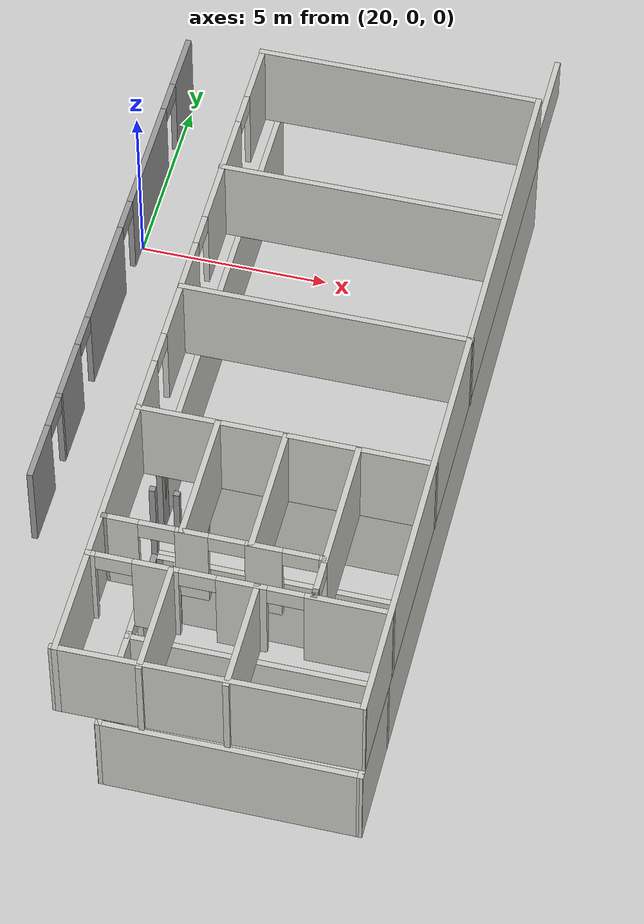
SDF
<sdf version="1.6">
 <world name="default">
  <model name="ground_plane">
   <static>1</static>
   <link name="link">
    <collision name="collision">
     <geometry><plane><normal>0 0 1</normal><size>100 100</size></plane></geometry>
     <surface>
      <contact><collide_bitmask>65535</collide_bitmask></contact>
      <friction><ode><mu>100</mu><mu2>50</mu2></ode></friction>
     </surface>
    </collision>
    <visual name="visual">
     <cast_shadows>0</cast_shadows>
     <geometry><plane><normal>0 0 1</normal><size>100 100</size></plane></geometry>
     <material>
      <script><uri>file://media/materials/scripts/gazebo.material</uri><name>Gazebo/Grey</name></script>
     </material>
    </visual>
   </link>
  </model>
  <model name="ifes_bloco_m">
   <pose>0.003818 -4.2564 0 0 -0 0</pose>
   <link name="Wall_1">
    <collision name="Wall_1_Collision">
     <geometry><box><size>19.98 0.15 2.5</size></box></geometry>
     <pose>0 0 1.25 0 -0 0</pose>
    </collision>
    <visual name="Wall_1_Visual">
     <pose>0 0 1.25 0 -0 0</pose>
     <geometry><box><size>19.98 0.15 2.5</size></box></geometry>
     <material>
      <script><uri>file://media/materials/scripts/gazebo.material</uri><name>Gazebo/CeilingTiled</name></script>
      <ambient>1 1 1 1</ambient>
     </material>
     <meta><layer>0</layer></meta>
    </visual>
    <pose>29.8619 -2.4541 0 0 -0 -1.57029</pose>
   </link>
   <link name="Wall_10">
    <collision name="Wall_10_Collision">
     <geometry><box><size>6.25 0.15 2.5</size></box></geometry>
     <pose>0 0 1.25 0 -0 0</pose>
    </collision>
    <visual name="Wall_10_Visual">
     <pose>0 0 1.25 0 -0 0</pose>
     <geometry><box><size>6.25 0.15 2.5</size></box></geometry>
     <material>
      <script><uri>file://media/materials/scripts/gazebo.material</uri><name>Gazebo/CeilingTiled</name></script>
      <ambient>1 1 1 1</ambient>
     </material>
     <meta><layer>0</layer></meta>
    </visual>
    <pose>26.7153 -7.31464 0 0 -0 3.14159</pose>
   </link>
   <link name="Wall_118">
    <collision name="Wall_118_Collision">
     <geometry><box><size>7.5 0.15 2.5</size></box></geometry>
     <pose>0 0 1.25 0 -0 0</pose>
    </collision>
    <visual name="Wall_118_Visual">
     <pose>0 0 1.25 0 -0 0</pose>
     <geometry><box><size>7.5 0.15 2.5</size></box></geometry>
     <material>
      <script><uri>file://media/materials/scripts/gazebo.material</uri><name>Gazebo/CeilingTiled</name></script>
      <ambient>1 1 1 1</ambient>
     </material>
     <meta><layer>1</layer></meta>
    </visual>
    <pose>26.1723 3.25797 2.5 0 -0 0</pose>
   </link>
   <link name="Wall_12">
    <collision name="Wall_12_Collision">
     <geometry><box><size>0.15 0.15 2.5</size></box></geometry>
     <pose>0 0 1.25 0 -0 0</pose>
    </collision>
    <visual name="Wall_12_Visual">
     <pose>0 0 1.25 0 -0 0</pose>
     <geometry><box><size>0.15 0.15 2.5</size></box></geometry>
     <material>
      <script><uri>file://media/materials/scripts/gazebo.material</uri><name>Gazebo/Grey</name></script>
      <ambient>1 1 1 1</ambient>
     </material>
     <meta><layer>0</layer></meta>
    </visual>
    <pose>23.6653 -7.31464 0 0 -0 0</pose>
   </link>
   <link name="Wall_120">
    <collision name="Wall_120_Collision">
     <geometry><box><size>7.5 0.15 2.5</size></box></geometry>
     <pose>0 0 1.25 0 -0 0</pose>
    </collision>
    <visual name="Wall_120_Visual">
     <pose>0 0 1.25 0 -0 0</pose>
     <geometry><box><size>7.5 0.15 2.5</size></box></geometry>
     <material>
      <script><uri>file://media/materials/scripts/gazebo.material</uri><name>Gazebo/CeilingTiled</name></script>
      <ambient>1 1 1 1</ambient>
     </material>
     <meta><layer>1</layer></meta>
    </visual>
    <pose>26.2075 -0.857943 2.5 0 -0 0</pose>
   </link>
   <link name="Wall_121">
    <collision name="Wall_121_Collision">
     <geometry><box><size>0.15 0.15 2.5</size></box></geometry>
     <pose>0 0 1.25 0 -0 0</pose>
    </collision>
    <visual name="Wall_121_Visual">
     <pose>0 0 1.25 0 -0 0</pose>
     <geometry><box><size>0.15 0.15 2.5</size></box></geometry>
     <material>
      <script><uri>file://media/materials/scripts/gazebo.material</uri><name>Gazebo/Grey</name></script>
      <ambient>1 1 1 1</ambient>
     </material>
     <meta><layer>1</layer></meta>
    </visual>
    <pose>29.8825 -0.857943 2.5 0 -0 0</pose>
   </link>
   <link name="Wall_124">
    <collision name="Wall_124_Collision">
     <geometry><box><size>7.5 0.15 2.5</size></box></geometry>
     <pose>0 0 1.25 0 -0 0</pose>
    </collision>
    <visual name="Wall_124_Visual">
     <pose>0 0 1.25 0 -0 0</pose>
     <geometry><box><size>7.5 0.15 2.5</size></box></geometry>
     <material>
      <script><uri>file://media/materials/scripts/gazebo.material</uri><name>Gazebo/CeilingTiled</name></script>
      <ambient>1 1 1 1</ambient>
     </material>
     <meta><layer>1</layer></meta>
    </visual>
    <pose>26.2012 -4.84441 2.5 0 -0 0</pose>
   </link>
   <link name="Wall_129">
    <collision name="Wall_129_Collision">
     <geometry><box><size>3.5 0.15 2.5</size></box></geometry>
     <pose>0 0 1.25 0 -0 0</pose>
    </collision>
    <visual name="Wall_129_Visual">
     <pose>0 0 1.25 0 -0 0</pose>
     <geometry><box><size>3.5 0.15 2.5</size></box></geometry>
     <material>
      <script><uri>file://media/materials/scripts/gazebo.material</uri><name>Gazebo/CeilingTiled</name></script>
      <ambient>1 1 1 1</ambient>
     </material>
     <meta><layer>1</layer></meta>
    </visual>
    <pose>24.5069 -6.54663 2.5 0 -0 -1.5708</pose>
   </link>
   <link name="Wall_131">
    <collision name="Wall_131_Collision">
     <geometry><box><size>3.5 0.15 2.5</size></box></geometry>
     <pose>0 0 1.25 0 -0 0</pose>
    </collision>
    <visual name="Wall_131_Visual">
     <pose>0 0 1.25 0 -0 0</pose>
     <geometry><box><size>3.5 0.15 2.5</size></box></geometry>
     <material>
      <script><uri>file://media/materials/scripts/gazebo.material</uri><name>Gazebo/CeilingTiled</name></script>
      <ambient>1 1 1 1</ambient>
     </material>
     <meta><layer>1</layer></meta>
    </visual>
    <pose>26.203 -6.54862 2.5 0 -0 -1.5708</pose>
   </link>
   <link name="Wall_133">
    <pose>28.0029 -7.04663 2.5 0 -0 -1.5708</pose>
    <visual name="Wall_133_Visual_0">
     <pose>-0.471414 0 1.25 0 -0 0</pose>
     <geometry><box><size>3.55717 0.15 2.5</size></box></geometry>
     <material>
      <script><uri>file://media/materials/scripts/gazebo.material</uri><name>Gazebo/CeilingTiled</name></script>
      <ambient>1 1 1 1</ambient>
     </material>
     <meta><layer>1</layer></meta>
    </visual>
    <collision name="Wall_133_Collision_0">
     <geometry><box><size>3.55717 0.15 2.5</size></box></geometry>
     <pose>-0.471414 0 1.25 0 -0 0</pose>
    </collision>
    <visual name="Wall_133_Visual_1">
     <pose>2.22859 0 1.25 0 -0 0</pose>
     <geometry><box><size>0.042828 0.15 2.5</size></box></geometry>
     <material>
      <script><uri>file://media/materials/scripts/gazebo.material</uri><name>Gazebo/CeilingTiled</name></script>
      <ambient>1 1 1 1</ambient>
     </material>
     <meta><layer>1</layer></meta>
    </visual>
    <collision name="Wall_133_Collision_1">
     <geometry><box><size>0.042828 0.15 2.5</size></box></geometry>
     <pose>2.22859 0 1.25 0 -0 0</pose>
    </collision>
    <visual name="Wall_133_Visual_2">
     <pose>1.75717 0 2.25 0 -0 0</pose>
     <geometry><box><size>0.9 0.15 0.5</size></box></geometry>
     <material>
      <script><uri>file://media/materials/scripts/gazebo.material</uri><name>Gazebo/CeilingTiled</name></script>
      <ambient>1 1 1 1</ambient>
     </material>
     <meta><layer>1</layer></meta>
    </visual>
    <collision name="Wall_133_Collision_2">
     <geometry><box><size>0.9 0.15 0.5</size></box></geometry>
     <pose>1.75717 0 2.25 0 -0 0</pose>
    </collision>
   </link>
   <link name="Wall_134">
    <collision name="Wall_134_Collision">
     <geometry><box><size>0.25 0.15 2.5</size></box></geometry>
     <pose>0 0 1.25 0 -0 0</pose>
    </collision>
    <visual name="Wall_134_Visual">
     <pose>0 0 1.25 0 -0 0</pose>
     <geometry><box><size>0.25 0.15 2.5</size></box></geometry>
     <material>
      <script><uri>file://media/materials/scripts/gazebo.material</uri><name>Gazebo/Grey</name></script>
      <ambient>1 1 1 1</ambient>
     </material>
     <meta><layer>1</layer></meta>
    </visual>
    <pose>28.0029 -9.27163 2.5 0 -0 -1.5708</pose>
   </link>
   <link name="Wall_136">
    <collision name="Wall_136_Collision">
     <geometry><box><size>3 0.15 2.5</size></box></geometry>
     <pose>0 0 1.25 0 -0 0</pose>
    </collision>
    <visual name="Wall_136_Visual">
     <pose>0 0 1.25 0 -0 0</pose>
     <geometry><box><size>3 0.15 2.5</size></box></geometry>
     <material>
      <script><uri>file://media/materials/scripts/gazebo.material</uri><name>Gazebo/CeilingTiled</name></script>
      <ambient>1 1 1 1</ambient>
     </material>
     <meta><layer>1</layer></meta>
    </visual>
    <pose>24.5584 -10.8398 2.5 0 -0 -1.5708</pose>
   </link>
   <link name="Wall_138">
    <collision name="Wall_138_Collision">
     <geometry><box><size>3 0.15 2.5</size></box></geometry>
     <pose>0 0 1.25 0 -0 0</pose>
    </collision>
    <visual name="Wall_138_Visual">
     <pose>0 0 1.25 0 -0 0</pose>
     <geometry><box><size>3 0.15 2.5</size></box></geometry>
     <material>
      <script><uri>file://media/materials/scripts/gazebo.material</uri><name>Gazebo/CeilingTiled</name></script>
      <ambient>1 1 1 1</ambient>
     </material>
     <meta><layer>1</layer></meta>
    </visual>
    <pose>26.6381 -10.8335 2.5 0 -0 -1.5708</pose>
   </link>
   <link name="Wall_14">
    <collision name="Wall_14_Collision">
     <geometry><box><size>6.5 0.15 2.5</size></box></geometry>
     <pose>0 0 1.25 0 -0 0</pose>
    </collision>
    <visual name="Wall_14_Visual">
     <pose>0 0 1.25 0 -0 0</pose>
     <geometry><box><size>6.5 0.15 2.5</size></box></geometry>
     <material>
      <script><uri>file://media/materials/scripts/gazebo.material</uri><name>Gazebo/CeilingTiled</name></script>
      <ambient>1 1 1 1</ambient>
     </material>
     <meta><layer>0</layer></meta>
    </visual>
    <pose>26.6942 -9.78365 0 0 -0 0</pose>
   </link>
   <link name="Wall_141">
    <collision name="Wall_141_Collision">
     <geometry><box><size>2.71955 0.15 1.25</size></box></geometry>
     <pose>0 0 0.625 0 -0 0</pose>
    </collision>
    <visual name="Wall_141_Visual">
     <pose>0 0 0.625 0 -0 0</pose>
     <geometry><box><size>2.71955 0.15 1.25</size></box></geometry>
     <material>
      <script><uri>file://media/materials/scripts/gazebo.material</uri><name>Gazebo/CeilingTiled</name></script>
      <ambient>0.921569 0.807843 0.615686 1</ambient>
     </material>
     <meta><layer>1</layer></meta>
    </visual>
    <pose>29.8668 8.69064 2.5 0 -0 -1.57819</pose>
   </link>
   <link name="Wall_144">
    <collision name="Wall_144_Collision">
     <geometry><box><size>7.50007 0.15 2.5</size></box></geometry>
     <pose>0 0 1.25 0 -0 0</pose>
    </collision>
    <visual name="Wall_144_Visual">
     <pose>0 0 1.25 0 -0 0</pose>
     <geometry><box><size>7.50007 0.15 2.5</size></box></geometry>
     <material>
      <script><uri>file://media/materials/scripts/gazebo.material</uri><name>Gazebo/CeilingTiled</name></script>
      <ambient>1 1 1 1</ambient>
     </material>
     <meta><layer>1</layer></meta>
    </visual>
    <pose>26.1821 7.41341 2.5 0 -0 3.13962</pose>
   </link>
   <link name="Wall_16">
    <collision name="Wall_16_Collision">
     <geometry><box><size>0.508751 0.15 2.5</size></box></geometry>
     <pose>0 0 1.25 0 -0 0</pose>
    </collision>
    <visual name="Wall_16_Visual">
     <pose>0 0 1.25 0 -0 0</pose>
     <geometry><box><size>0.508751 0.15 2.5</size></box></geometry>
     <material>
      <script><uri>file://media/materials/scripts/gazebo.material</uri><name>Gazebo/Grey</name></script>
      <ambient>1 1 1 1</ambient>
     </material>
     <meta><layer>0</layer></meta>
    </visual>
    <pose>23.5113 -7.36843 0 0 -0 1.5949</pose>
   </link>
   <link name="Wall_17">
    <collision name="Wall_17_Collision">
     <geometry><box><size>0.15 0.15 2.5</size></box></geometry>
     <pose>0 0 1.25 0 -0 0</pose>
    </collision>
    <visual name="Wall_17_Visual">
     <pose>0 0 1.25 0 -0 0</pose>
     <geometry><box><size>0.15 0.15 2.5</size></box></geometry>
     <material>
      <script><uri>file://media/materials/scripts/gazebo.material</uri><name>Gazebo/Grey</name></script>
      <ambient>1 1 1 1</ambient>
     </material>
     <meta><layer>0</layer></meta>
    </visual>
    <pose>23.5069 -7.1891 0 0 -0 0</pose>
   </link>
   <link name="Wall_18">
    <collision name="Wall_18_Collision">
     <geometry><box><size>0.75 0.15 2.5</size></box></geometry>
     <pose>0 0 1.25 0 -0 0</pose>
    </collision>
    <visual name="Wall_18_Visual">
     <pose>0 0 1.25 0 -0 0</pose>
     <geometry><box><size>0.75 0.15 2.5</size></box></geometry>
     <material>
      <script><uri>file://media/materials/scripts/gazebo.material</uri><name>Gazebo/CeilingTiled</name></script>
      <ambient>1 1 1 1</ambient>
     </material>
     <meta><layer>0</layer></meta>
    </visual>
    <pose>23.8069 -7.1891 0 0 -0 0</pose>
   </link>
   <link name="Wall_19">
    <collision name="Wall_19_Collision">
     <geometry><box><size>0.15 0.15 2.5</size></box></geometry>
     <pose>0 0 1.25 0 -0 0</pose>
    </collision>
    <visual name="Wall_19_Visual">
     <pose>0 0 1.25 0 -0 0</pose>
     <geometry><box><size>0.15 0.15 2.5</size></box></geometry>
     <material>
      <script><uri>file://media/materials/scripts/gazebo.material</uri><name>Gazebo/Grey</name></script>
      <ambient>1 1 1 1</ambient>
     </material>
     <meta><layer>0</layer></meta>
    </visual>
    <pose>24.1069 -7.1891 0 0 -0 0</pose>
   </link>
   <link name="Wall_2">
    <collision name="Wall_2_Collision">
     <geometry><box><size>6.5 0.15 2.5</size></box></geometry>
     <pose>0 0 1.25 0 -0 0</pose>
    </collision>
    <visual name="Wall_2_Visual">
     <pose>0 0 1.25 0 -0 0</pose>
     <geometry><box><size>6.5 0.15 2.5</size></box></geometry>
     <material>
      <script><uri>file://media/materials/scripts/gazebo.material</uri><name>Gazebo/CeilingTiled</name></script>
      <ambient>1 1 1 1</ambient>
     </material>
     <meta><layer>0</layer></meta>
    </visual>
    <pose>26.6819 -12.3691 0 0 -0 3.14159</pose>
   </link>
   <link name="Wall_3">
    <pose>23.5163 -9.95843 0 0 -0 1.57108</pose>
    <visual name="Wall_3_Visual_0">
     <pose>-2.37408 0 1.25 0 -0 0</pose>
     <geometry><box><size>0.223186 0.15 2.5</size></box></geometry>
     <material>
      <script><uri>file://media/materials/scripts/gazebo.material</uri><name>Gazebo/CeilingTiled</name></script>
      <ambient>1 1 1 1</ambient>
     </material>
     <meta><layer>0</layer></meta>
    </visual>
    <collision name="Wall_3_Collision_0">
     <geometry><box><size>0.223186 0.15 2.5</size></box></geometry>
     <pose>-2.37408 0 1.25 0 -0 0</pose>
    </collision>
    <visual name="Wall_3_Visual_1">
     <pose>-0.52713 0 1.25 0 -0 0</pose>
     <geometry><box><size>1.67072 0.15 2.5</size></box></geometry>
     <material>
      <script><uri>file://media/materials/scripts/gazebo.material</uri><name>Gazebo/CeilingTiled</name></script>
      <ambient>1 1 1 1</ambient>
     </material>
     <meta><layer>0</layer></meta>
    </visual>
    <collision name="Wall_3_Collision_1">
     <geometry><box><size>1.67072 0.15 2.5</size></box></geometry>
     <pose>-0.52713 0 1.25 0 -0 0</pose>
    </collision>
    <visual name="Wall_3_Visual_2">
     <pose>1.84695 0 1.25 0 -0 0</pose>
     <geometry><box><size>1.27745 0.15 2.5</size></box></geometry>
     <material>
      <script><uri>file://media/materials/scripts/gazebo.material</uri><name>Gazebo/CeilingTiled</name></script>
      <ambient>1 1 1 1</ambient>
     </material>
     <meta><layer>0</layer></meta>
    </visual>
    <collision name="Wall_3_Collision_2">
     <geometry><box><size>1.27745 0.15 2.5</size></box></geometry>
     <pose>1.84695 0 1.25 0 -0 0</pose>
    </collision>
    <visual name="Wall_3_Visual_3">
     <pose>-1.81249 0 2.25 0 -0 0</pose>
     <geometry><box><size>0.9 0.15 0.5</size></box></geometry>
     <material>
      <script><uri>file://media/materials/scripts/gazebo.material</uri><name>Gazebo/CeilingTiled</name></script>
      <ambient>1 1 1 1</ambient>
     </material>
     <meta><layer>0</layer></meta>
    </visual>
    <collision name="Wall_3_Collision_3">
     <geometry><box><size>0.9 0.15 0.5</size></box></geometry>
     <pose>-1.81249 0 2.25 0 -0 0</pose>
    </collision>
    <visual name="Wall_3_Visual_4">
     <pose>0.75823 0 2.25 0 -0 0</pose>
     <geometry><box><size>0.9 0.15 0.5</size></box></geometry>
     <material>
      <script><uri>file://media/materials/scripts/gazebo.material</uri><name>Gazebo/CeilingTiled</name></script>
      <ambient>1 1 1 1</ambient>
     </material>
     <meta><layer>0</layer></meta>
    </visual>
    <collision name="Wall_3_Collision_4">
     <geometry><box><size>0.9 0.15 0.5</size></box></geometry>
     <pose>0.75823 0 2.25 0 -0 0</pose>
    </collision>
   </link>
   <link name="Wall_31">
    <collision name="Wall_31_Collision">
     <geometry><box><size>12 0.15 2.5</size></box></geometry>
     <pose>0 0 1.25 0 -0 0</pose>
    </collision>
    <visual name="Wall_31_Visual">
     <pose>0 0 1.25 0 -0 0</pose>
     <geometry><box><size>12 0.15 2.5</size></box></geometry>
     <material>
      <script><uri>file://media/materials/scripts/gazebo.material</uri><name>Gazebo/CeilingTiled</name></script>
      <ambient>1 1 1 1</ambient>
     </material>
     <meta><layer>0</layer></meta>
    </visual>
    <pose>22.9246 1.61931 0 0 -0 -1.5708</pose>
   </link>
   <link name="Wall_32">
    <collision name="Wall_32_Collision">
     <geometry><box><size>0.25 0.15 2.5</size></box></geometry>
     <pose>0 0 1.25 0 -0 0</pose>
    </collision>
    <visual name="Wall_32_Visual">
     <pose>0 0 1.25 0 -0 0</pose>
     <geometry><box><size>0.25 0.15 2.5</size></box></geometry>
     <material>
      <script><uri>file://media/materials/scripts/gazebo.material</uri><name>Gazebo/Grey</name></script>
      <ambient>1 1 1 1</ambient>
     </material>
     <meta><layer>0</layer></meta>
    </visual>
    <pose>22.9246 -4.35569 0 0 -0 -1.5708</pose>
   </link>
   <link name="Wall_33">
    <collision name="Wall_33_Collision">
     <geometry><box><size>0.25 0.15 2.5</size></box></geometry>
     <pose>0 0 1.25 0 -0 0</pose>
    </collision>
    <visual name="Wall_33_Visual">
     <pose>0 0 1.25 0 -0 0</pose>
     <geometry><box><size>0.25 0.15 2.5</size></box></geometry>
     <material>
      <script><uri>file://media/materials/scripts/gazebo.material</uri><name>Gazebo/Grey</name></script>
      <ambient>1 1 1 1</ambient>
     </material>
     <meta><layer>0</layer></meta>
    </visual>
    <pose>22.9246 -4.35569 0 0 -0 1.5708</pose>
   </link>
   <link name="Wall_34">
    <collision name="Wall_34_Collision">
     <geometry><box><size>0.5 0.15 2.5</size></box></geometry>
     <pose>0 0 1.25 0 -0 0</pose>
    </collision>
    <visual name="Wall_34_Visual">
     <pose>0 0 1.25 0 -0 0</pose>
     <geometry><box><size>0.5 0.15 2.5</size></box></geometry>
     <material>
      <script><uri>file://media/materials/scripts/gazebo.material</uri><name>Gazebo/Grey</name></script>
      <ambient>1 1 1 1</ambient>
     </material>
     <meta><layer>0</layer></meta>
    </visual>
    <pose>22.9246 -4.48069 0 0 -0 -1.5708</pose>
   </link>
   <link name="Wall_5">
    <pose>24.1013 -6.00614 0 0 -0 1.57382</pose>
    <visual name="Wall_5_Visual_0">
     <pose>-0.588924 0 1.25 0 -0 0</pose>
     <geometry><box><size>1.83081 0.15 2.5</size></box></geometry>
     <material>
      <script><uri>file://media/materials/scripts/gazebo.material</uri><name>Gazebo/CeilingTiled</name></script>
      <ambient>1 1 1 1</ambient>
     </material>
     <meta><layer>0</layer></meta>
    </visual>
    <collision name="Wall_5_Collision_0">
     <geometry><box><size>1.83081 0.15 2.5</size></box></geometry>
     <pose>-0.588924 0 1.25 0 -0 0</pose>
    </collision>
    <visual name="Wall_5_Visual_1">
     <pose>1.36541 0 1.25 0 -0 0</pose>
     <geometry><box><size>0.277848 0.15 2.5</size></box></geometry>
     <material>
      <script><uri>file://media/materials/scripts/gazebo.material</uri><name>Gazebo/CeilingTiled</name></script>
      <ambient>1 1 1 1</ambient>
     </material>
     <meta><layer>0</layer></meta>
    </visual>
    <collision name="Wall_5_Collision_1">
     <geometry><box><size>0.277848 0.15 2.5</size></box></geometry>
     <pose>1.36541 0 1.25 0 -0 0</pose>
    </collision>
    <visual name="Wall_5_Visual_2">
     <pose>0.776482 0 2.25 0 -0 0</pose>
     <geometry><box><size>0.9 0.15 0.5</size></box></geometry>
     <material>
      <script><uri>file://media/materials/scripts/gazebo.material</uri><name>Gazebo/CeilingTiled</name></script>
      <ambient>1 1 1 1</ambient>
     </material>
     <meta><layer>0</layer></meta>
    </visual>
    <collision name="Wall_5_Collision_2">
     <geometry><box><size>0.9 0.15 0.5</size></box></geometry>
     <pose>0.776482 0 2.25 0 -0 0</pose>
    </collision>
   </link>
   <link name="Wall_57">
    <collision name="Wall_57_Collision">
     <geometry><box><size>19.6952 0.15 2.5</size></box></geometry>
     <pose>0 0 1.25 0 -0 0</pose>
    </collision>
    <visual name="Wall_57_Visual">
     <pose>0 0 1.25 0 -0 0</pose>
     <geometry><box><size>19.6952 0.15 2.5</size></box></geometry>
     <material>
      <script><uri>file://media/materials/scripts/gazebo.material</uri><name>Gazebo/CeilingTiled</name></script>
      <ambient>1 1 1 1</ambient>
     </material>
     <meta><layer>1</layer></meta>
    </visual>
    <pose>29.8571 -2.36648 2.5 0 -0 -1.57082</pose>
   </link>
   <link name="Wall_58">
    <collision name="Wall_58_Collision">
     <geometry><box><size>7.55854 0.15 2.5</size></box></geometry>
     <pose>0 0 1.25 0 -0 0</pose>
    </collision>
    <visual name="Wall_58_Visual">
     <pose>0 0 1.25 0 -0 0</pose>
     <geometry><box><size>7.55854 0.15 2.5</size></box></geometry>
     <material>
      <script><uri>file://media/materials/scripts/gazebo.material</uri><name>Gazebo/CeilingTiled</name></script>
      <ambient>1 1 1 1</ambient>
     </material>
     <meta><layer>1</layer></meta>
    </visual>
    <pose>26.1528 -12.1743 2.5 0 -0 -3.1321</pose>
   </link>
   <link name="Wall_59">
    <pose>22.5191 -2.40946 2.5 0 -0 1.5708</pose>
    <visual name="Wall_59_Visual_0">
     <pose>-5.41052 0 1.25 0 -0 0</pose>
     <geometry><box><size>8.92896 0.15 2.5</size></box></geometry>
     <material>
      <script><uri>file://media/materials/scripts/gazebo.material</uri><name>Gazebo/CeilingTiled</name></script>
      <ambient>1 1 1 1</ambient>
     </material>
     <meta><layer>1</layer></meta>
    </visual>
    <collision name="Wall_59_Collision_0">
     <geometry><box><size>8.92896 0.15 2.5</size></box></geometry>
     <pose>-5.41052 0 1.25 0 -0 0</pose>
    </collision>
    <visual name="Wall_59_Visual_1">
     <pose>1.48163 0 1.25 0 -0 0</pose>
     <geometry><box><size>3.05533 0.15 2.5</size></box></geometry>
     <material>
      <script><uri>file://media/materials/scripts/gazebo.material</uri><name>Gazebo/CeilingTiled</name></script>
      <ambient>1 1 1 1</ambient>
     </material>
     <meta><layer>1</layer></meta>
    </visual>
    <collision name="Wall_59_Collision_1">
     <geometry><box><size>3.05533 0.15 2.5</size></box></geometry>
     <pose>1.48163 0 1.25 0 -0 0</pose>
    </collision>
    <visual name="Wall_59_Visual_2">
     <pose>5.58731 0 1.25 0 -0 0</pose>
     <geometry><box><size>3.35603 0.15 2.5</size></box></geometry>
     <material>
      <script><uri>file://media/materials/scripts/gazebo.material</uri><name>Gazebo/CeilingTiled</name></script>
      <ambient>1 1 1 1</ambient>
     </material>
     <meta><layer>1</layer></meta>
    </visual>
    <collision name="Wall_59_Collision_2">
     <geometry><box><size>3.35603 0.15 2.5</size></box></geometry>
     <pose>5.58731 0 1.25 0 -0 0</pose>
    </collision>
    <visual name="Wall_59_Visual_3">
     <pose>9.02016 0 1.25 0 -0 0</pose>
     <geometry><box><size>1.70968 0.15 2.5</size></box></geometry>
     <material>
      <script><uri>file://media/materials/scripts/gazebo.material</uri><name>Gazebo/CeilingTiled</name></script>
      <ambient>1 1 1 1</ambient>
     </material>
     <meta><layer>1</layer></meta>
    </visual>
    <collision name="Wall_59_Collision_3">
     <geometry><box><size>1.70968 0.15 2.5</size></box></geometry>
     <pose>9.02016 0 1.25 0 -0 0</pose>
    </collision>
    <visual name="Wall_59_Visual_4">
     <pose>-0.49604 0 2.25 0 -0 0</pose>
     <geometry><box><size>0.9 0.15 0.5</size></box></geometry>
     <material>
      <script><uri>file://media/materials/scripts/gazebo.material</uri><name>Gazebo/CeilingTiled</name></script>
      <ambient>1 1 1 1</ambient>
     </material>
     <meta><layer>1</layer></meta>
    </visual>
    <collision name="Wall_59_Collision_4">
     <geometry><box><size>0.9 0.15 0.5</size></box></geometry>
     <pose>-0.49604 0 2.25 0 -0 0</pose>
    </collision>
    <visual name="Wall_59_Visual_5">
     <pose>3.45929 0 2.25 0 -0 0</pose>
     <geometry><box><size>0.9 0.15 0.5</size></box></geometry>
     <material>
      <script><uri>file://media/materials/scripts/gazebo.material</uri><name>Gazebo/CeilingTiled</name></script>
      <ambient>1 1 1 1</ambient>
     </material>
     <meta><layer>1</layer></meta>
    </visual>
    <collision name="Wall_59_Collision_5">
     <geometry><box><size>0.9 0.15 0.5</size></box></geometry>
     <pose>3.45929 0 2.25 0 -0 0</pose>
    </collision>
    <visual name="Wall_59_Visual_6">
     <pose>7.71532 0 2.25 0 -0 0</pose>
     <geometry><box><size>0.9 0.15 0.5</size></box></geometry>
     <material>
      <script><uri>file://media/materials/scripts/gazebo.material</uri><name>Gazebo/CeilingTiled</name></script>
      <ambient>1 1 1 1</ambient>
     </material>
     <meta><layer>1</layer></meta>
    </visual>
    <collision name="Wall_59_Collision_6">
     <geometry><box><size>0.9 0.15 0.5</size></box></geometry>
     <pose>7.71532 0 2.25 0 -0 0</pose>
    </collision>
   </link>
   <link name="Wall_64">
    <pose>25.2749 -8.23257 2.5 0 -0 3.14159</pose>
    <visual name="Wall_64_Visual_0">
     <pose>-2.67147 0 1.25 0 -0 0</pose>
     <geometry><box><size>0.157061 0.15 2.5</size></box></geometry>
     <material>
      <script><uri>file://media/materials/scripts/gazebo.material</uri><name>Gazebo/CeilingTiled</name></script>
      <ambient>1 1 1 1</ambient>
     </material>
     <meta><layer>1</layer></meta>
    </visual>
    <collision name="Wall_64_Collision_0">
     <geometry><box><size>0.157061 0.15 2.5</size></box></geometry>
     <pose>-2.67147 0 1.25 0 -0 0</pose>
    </collision>
    <visual name="Wall_64_Visual_1">
     <pose>-1.23802 0 1.25 0 -0 0</pose>
     <geometry><box><size>0.909841 0.15 2.5</size></box></geometry>
     <material>
      <script><uri>file://media/materials/scripts/gazebo.material</uri><name>Gazebo/CeilingTiled</name></script>
      <ambient>1 1 1 1</ambient>
     </material>
     <meta><layer>1</layer></meta>
    </visual>
    <collision name="Wall_64_Collision_1">
     <geometry><box><size>0.909841 0.15 2.5</size></box></geometry>
     <pose>-1.23802 0 1.25 0 -0 0</pose>
    </collision>
    <visual name="Wall_64_Visual_2">
     <pose>0.526197 0 1.25 0 -0 0</pose>
     <geometry><box><size>0.818589 0.15 2.5</size></box></geometry>
     <material>
      <script><uri>file://media/materials/scripts/gazebo.material</uri><name>Gazebo/CeilingTiled</name></script>
      <ambient>1 1 1 1</ambient>
     </material>
     <meta><layer>1</layer></meta>
    </visual>
    <collision name="Wall_64_Collision_2">
     <geometry><box><size>0.818589 0.15 2.5</size></box></geometry>
     <pose>0.526197 0 1.25 0 -0 0</pose>
    </collision>
    <visual name="Wall_64_Visual_3">
     <pose>2.29275 0 1.25 0 -0 0</pose>
     <geometry><box><size>0.914509 0.15 2.5</size></box></geometry>
     <material>
      <script><uri>file://media/materials/scripts/gazebo.material</uri><name>Gazebo/CeilingTiled</name></script>
      <ambient>1 1 1 1</ambient>
     </material>
     <meta><layer>1</layer></meta>
    </visual>
    <collision name="Wall_64_Collision_3">
     <geometry><box><size>0.914509 0.15 2.5</size></box></geometry>
     <pose>2.29275 0 1.25 0 -0 0</pose>
    </collision>
    <visual name="Wall_64_Visual_4">
     <pose>-2.14294 0 2.25 0 -0 0</pose>
     <geometry><box><size>0.9 0.15 0.5</size></box></geometry>
     <material>
      <script><uri>file://media/materials/scripts/gazebo.material</uri><name>Gazebo/CeilingTiled</name></script>
      <ambient>1 1 1 1</ambient>
     </material>
     <meta><layer>1</layer></meta>
    </visual>
    <collision name="Wall_64_Collision_4">
     <geometry><box><size>0.9 0.15 0.5</size></box></geometry>
     <pose>-2.14294 0 2.25 0 -0 0</pose>
    </collision>
    <visual name="Wall_64_Visual_5">
     <pose>-0.333097 0 2.25 0 -0 0</pose>
     <geometry><box><size>0.9 0.15 0.5</size></box></geometry>
     <material>
      <script><uri>file://media/materials/scripts/gazebo.material</uri><name>Gazebo/CeilingTiled</name></script>
      <ambient>1 1 1 1</ambient>
     </material>
     <meta><layer>1</layer></meta>
    </visual>
    <collision name="Wall_64_Collision_5">
     <geometry><box><size>0.9 0.15 0.5</size></box></geometry>
     <pose>-0.333097 0 2.25 0 -0 0</pose>
    </collision>
    <visual name="Wall_64_Visual_6">
     <pose>1.38549 0 2.25 0 -0 0</pose>
     <geometry><box><size>0.9 0.15 0.5</size></box></geometry>
     <material>
      <script><uri>file://media/materials/scripts/gazebo.material</uri><name>Gazebo/CeilingTiled</name></script>
      <ambient>1 1 1 1</ambient>
     </material>
     <meta><layer>1</layer></meta>
    </visual>
    <collision name="Wall_64_Collision_6">
     <geometry><box><size>0.9 0.15 0.5</size></box></geometry>
     <pose>1.38549 0 2.25 0 -0 0</pose>
    </collision>
   </link>
   <link name="Wall_65">
    <collision name="Wall_65_Collision">
     <geometry><box><size>0.15 0.15 2.5</size></box></geometry>
     <pose>0 0 1.25 0 -0 0</pose>
    </collision>
    <visual name="Wall_65_Visual">
     <pose>0 0 1.25 0 -0 0</pose>
     <geometry><box><size>0.15 0.15 2.5</size></box></geometry>
     <material>
      <script><uri>file://media/materials/scripts/gazebo.material</uri><name>Gazebo/Grey</name></script>
      <ambient>1 1 1 1</ambient>
     </material>
     <meta><layer>1</layer></meta>
    </visual>
    <pose>22.5999 -8.23257 2.5 0 -0 0</pose>
   </link>
   <link name="Wall_66">
    <pose>26.1942 -9.38464 2.5 0 -0 0</pose>
    <visual name="Wall_66_Visual_0">
     <pose>-3.61948 0 1.25 0 -0 0</pose>
     <geometry><box><size>0.261043 0.15 2.5</size></box></geometry>
     <material>
      <script><uri>file://media/materials/scripts/gazebo.material</uri><name>Gazebo/CeilingTiled</name></script>
      <ambient>1 1 1 1</ambient>
     </material>
     <meta><layer>1</layer></meta>
    </visual>
    <collision name="Wall_66_Collision_0">
     <geometry><box><size>0.261043 0.15 2.5</size></box></geometry>
     <pose>-3.61948 0 1.25 0 -0 0</pose>
    </collision>
    <visual name="Wall_66_Visual_1">
     <pose>-2.01896 0 1.25 0 -0 0</pose>
     <geometry><box><size>1.14 0.15 2.5</size></box></geometry>
     <material>
      <script><uri>file://media/materials/scripts/gazebo.material</uri><name>Gazebo/CeilingTiled</name></script>
      <ambient>1 1 1 1</ambient>
     </material>
     <meta><layer>1</layer></meta>
    </visual>
    <collision name="Wall_66_Collision_1">
     <geometry><box><size>1.14 0.15 2.5</size></box></geometry>
     <pose>-2.01896 0 1.25 0 -0 0</pose>
    </collision>
    <visual name="Wall_66_Visual_2">
     <pose>0.069657 0 1.25 0 -0 0</pose>
     <geometry><box><size>1.23723 0.15 2.5</size></box></geometry>
     <material>
      <script><uri>file://media/materials/scripts/gazebo.material</uri><name>Gazebo/CeilingTiled</name></script>
      <ambient>1 1 1 1</ambient>
     </material>
     <meta><layer>1</layer></meta>
    </visual>
    <collision name="Wall_66_Collision_2">
     <geometry><box><size>1.23723 0.15 2.5</size></box></geometry>
     <pose>0.069657 0 1.25 0 -0 0</pose>
    </collision>
    <visual name="Wall_66_Visual_3">
     <pose>2.66914 0 1.25 0 -0 0</pose>
     <geometry><box><size>2.16173 0.15 2.5</size></box></geometry>
     <material>
      <script><uri>file://media/materials/scripts/gazebo.material</uri><name>Gazebo/CeilingTiled</name></script>
      <ambient>1 1 1 1</ambient>
     </material>
     <meta><layer>1</layer></meta>
    </visual>
    <collision name="Wall_66_Collision_3">
     <geometry><box><size>2.16173 0.15 2.5</size></box></geometry>
     <pose>2.66914 0 1.25 0 -0 0</pose>
    </collision>
    <visual name="Wall_66_Visual_4">
     <pose>-3.03896 0 2.25 0 -0 0</pose>
     <geometry><box><size>0.9 0.15 0.5</size></box></geometry>
     <material>
      <script><uri>file://media/materials/scripts/gazebo.material</uri><name>Gazebo/CeilingTiled</name></script>
      <ambient>1 1 1 1</ambient>
     </material>
     <meta><layer>1</layer></meta>
    </visual>
    <collision name="Wall_66_Collision_4">
     <geometry><box><size>0.9 0.15 0.5</size></box></geometry>
     <pose>-3.03896 0 2.25 0 -0 0</pose>
    </collision>
    <visual name="Wall_66_Visual_5">
     <pose>-0.998957 0 2.25 0 -0 0</pose>
     <geometry><box><size>0.9 0.15 0.5</size></box></geometry>
     <material>
      <script><uri>file://media/materials/scripts/gazebo.material</uri><name>Gazebo/CeilingTiled</name></script>
      <ambient>1 1 1 1</ambient>
     </material>
     <meta><layer>1</layer></meta>
    </visual>
    <collision name="Wall_66_Collision_5">
     <geometry><box><size>0.9 0.15 0.5</size></box></geometry>
     <pose>-0.998957 0 2.25 0 -0 0</pose>
    </collision>
    <visual name="Wall_66_Visual_6">
     <pose>1.13827 0 2.25 0 -0 0</pose>
     <geometry><box><size>0.9 0.15 0.5</size></box></geometry>
     <material>
      <script><uri>file://media/materials/scripts/gazebo.material</uri><name>Gazebo/CeilingTiled</name></script>
      <ambient>1 1 1 1</ambient>
     </material>
     <meta><layer>1</layer></meta>
    </visual>
    <collision name="Wall_66_Collision_6">
     <geometry><box><size>0.9 0.15 0.5</size></box></geometry>
     <pose>1.13827 0 2.25 0 -0 0</pose>
    </collision>
   </link>
   <link name="Wall_68">
    <collision name="Wall_68_Collision">
     <geometry><box><size>0.15 0.15 2.5</size></box></geometry>
     <pose>0 0 1.25 0 -0 0</pose>
    </collision>
    <visual name="Wall_68_Visual">
     <pose>0 0 1.25 0 -0 0</pose>
     <geometry><box><size>0.15 0.15 2.5</size></box></geometry>
     <material>
      <script><uri>file://media/materials/scripts/gazebo.material</uri><name>Gazebo/Grey</name></script>
      <ambient>1 1 1 1</ambient>
     </material>
     <meta><layer>1</layer></meta>
    </visual>
    <pose>23.5069 -7.1891 2.5 0 -0 0</pose>
   </link>
   <link name="Wall_7">
    <collision name="Wall_7_Collision">
     <geometry><box><size>5.75 0.15 2.5</size></box></geometry>
     <pose>0 0 1.25 0 -0 0</pose>
    </collision>
    <visual name="Wall_7_Visual">
     <pose>0 0 1.25 0 -0 0</pose>
     <geometry><box><size>5.75 0.15 2.5</size></box></geometry>
     <material>
      <script><uri>file://media/materials/scripts/gazebo.material</uri><name>Gazebo/CeilingTiled</name></script>
      <ambient>1 1 1 1</ambient>
     </material>
     <meta><layer>0</layer></meta>
    </visual>
    <pose>26.9069 -4.5891 0 0 -0 0</pose>
   </link>
   <link name="Wall_70">
    <collision name="Wall_70_Collision">
     <geometry><box><size>0.15 0.15 2.5</size></box></geometry>
     <pose>0 0 1.25 0 -0 0</pose>
    </collision>
    <visual name="Wall_70_Visual">
     <pose>0 0 1.25 0 -0 0</pose>
     <geometry><box><size>0.15 0.15 2.5</size></box></geometry>
     <material>
      <script><uri>file://media/materials/scripts/gazebo.material</uri><name>Gazebo/Grey</name></script>
      <ambient>1 1 1 1</ambient>
     </material>
     <meta><layer>1</layer></meta>
    </visual>
    <pose>24.1069 -7.1891 2.5 0 -0 0</pose>
   </link>
   <link name="Wall_93">
    <pose>20.5438 -6.1257 2.5 0 -0 1.5708</pose>
    <visual name="Wall_93_Visual_0">
     <pose>-0.586151 0 1.25 0 -0 0</pose>
     <geometry><box><size>1.5777 0.15 2.5</size></box></geometry>
     <material>
      <script><uri>file://media/materials/scripts/gazebo.material</uri><name>Gazebo/Grey</name></script>
      <ambient>1 1 1 1</ambient>
     </material>
     <meta><layer>1</layer></meta>
    </visual>
    <collision name="Wall_93_Collision_0">
     <geometry><box><size>1.5777 0.15 2.5</size></box></geometry>
     <pose>-0.586151 0 1.25 0 -0 0</pose>
    </collision>
    <visual name="Wall_93_Visual_1">
     <pose>1.23885 0 1.25 0 -0 0</pose>
     <geometry><box><size>0.272303 0.15 2.5</size></box></geometry>
     <material>
      <script><uri>file://media/materials/scripts/gazebo.material</uri><name>Gazebo/Grey</name></script>
      <ambient>1 1 1 1</ambient>
     </material>
     <meta><layer>1</layer></meta>
    </visual>
    <collision name="Wall_93_Collision_1">
     <geometry><box><size>0.272303 0.15 2.5</size></box></geometry>
     <pose>1.23885 0 1.25 0 -0 0</pose>
    </collision>
    <visual name="Wall_93_Visual_2">
     <pose>0.652697 0 2.25 0 -0 0</pose>
     <geometry><box><size>0.9 0.15 0.5</size></box></geometry>
     <material>
      <script><uri>file://media/materials/scripts/gazebo.material</uri><name>Gazebo/Grey</name></script>
      <ambient>1 1 1 1</ambient>
     </material>
     <meta><layer>1</layer></meta>
    </visual>
    <collision name="Wall_93_Collision_2">
     <geometry><box><size>0.9 0.15 0.5</size></box></geometry>
     <pose>0.652697 0 2.25 0 -0 0</pose>
    </collision>
   </link>
   <link name="Wall_96">
    <pose>20.5438 1.2243 2.5 0 -0 1.5708</pose>
    <visual name="Wall_96_Visual_0">
     <pose>-5.32426 0 1.25 0 -0 0</pose>
     <geometry><box><size>1.60148 0.15 2.5</size></box></geometry>
     <material>
      <script><uri>file://media/materials/scripts/gazebo.material</uri><name>Gazebo/Grey</name></script>
      <ambient>1 1 1 1</ambient>
     </material>
     <meta><layer>1</layer></meta>
    </visual>
    <collision name="Wall_96_Collision_0">
     <geometry><box><size>1.60148 0.15 2.5</size></box></geometry>
     <pose>-5.32426 0 1.25 0 -0 0</pose>
    </collision>
    <visual name="Wall_96_Visual_1">
     <pose>-2.10351 0 1.25 0 -0 0</pose>
     <geometry><box><size>3.04002 0.15 2.5</size></box></geometry>
     <material>
      <script><uri>file://media/materials/scripts/gazebo.material</uri><name>Gazebo/Grey</name></script>
      <ambient>1 1 1 1</ambient>
     </material>
     <meta><layer>1</layer></meta>
    </visual>
    <collision name="Wall_96_Collision_1">
     <geometry><box><size>3.04002 0.15 2.5</size></box></geometry>
     <pose>-2.10351 0 1.25 0 -0 0</pose>
    </collision>
    <visual name="Wall_96_Visual_2">
     <pose>1.95964 0 1.25 0 -0 0</pose>
     <geometry><box><size>3.28627 0.15 2.5</size></box></geometry>
     <material>
      <script><uri>file://media/materials/scripts/gazebo.material</uri><name>Gazebo/Grey</name></script>
      <ambient>1 1 1 1</ambient>
     </material>
     <meta><layer>1</layer></meta>
    </visual>
    <collision name="Wall_96_Collision_2">
     <geometry><box><size>3.28627 0.15 2.5</size></box></geometry>
     <pose>1.95964 0 1.25 0 -0 0</pose>
    </collision>
    <visual name="Wall_96_Visual_3">
     <pose>5.31389 0 1.25 0 -0 0</pose>
     <geometry><box><size>1.62222 0.15 2.5</size></box></geometry>
     <material>
      <script><uri>file://media/materials/scripts/gazebo.material</uri><name>Gazebo/Grey</name></script>
      <ambient>1 1 1 1</ambient>
     </material>
     <meta><layer>1</layer></meta>
    </visual>
    <collision name="Wall_96_Collision_3">
     <geometry><box><size>1.62222 0.15 2.5</size></box></geometry>
     <pose>5.31389 0 1.25 0 -0 0</pose>
    </collision>
    <visual name="Wall_96_Visual_4">
     <pose>-4.07352 0 2.25 0 -0 0</pose>
     <geometry><box><size>0.9 0.15 0.5</size></box></geometry>
     <material>
      <script><uri>file://media/materials/scripts/gazebo.material</uri><name>Gazebo/Grey</name></script>
      <ambient>1 1 1 1</ambient>
     </material>
     <meta><layer>1</layer></meta>
    </visual>
    <collision name="Wall_96_Collision_4">
     <geometry><box><size>0.9 0.15 0.5</size></box></geometry>
     <pose>-4.07352 0 2.25 0 -0 0</pose>
    </collision>
    <visual name="Wall_96_Visual_5">
     <pose>-0.133495 0 2.25 0 -0 0</pose>
     <geometry><box><size>0.9 0.15 0.5</size></box></geometry>
     <material>
      <script><uri>file://media/materials/scripts/gazebo.material</uri><name>Gazebo/Grey</name></script>
      <ambient>1 1 1 1</ambient>
     </material>
     <meta><layer>1</layer></meta>
    </visual>
    <collision name="Wall_96_Collision_5">
     <geometry><box><size>0.9 0.15 0.5</size></box></geometry>
     <pose>-0.133495 0 2.25 0 -0 0</pose>
    </collision>
    <visual name="Wall_96_Visual_6">
     <pose>4.05278 0 2.25 0 -0 0</pose>
     <geometry><box><size>0.9 0.15 0.5</size></box></geometry>
     <material>
      <script><uri>file://media/materials/scripts/gazebo.material</uri><name>Gazebo/Grey</name></script>
      <ambient>1 1 1 1</ambient>
     </material>
     <meta><layer>1</layer></meta>
    </visual>
    <collision name="Wall_96_Collision_6">
     <geometry><box><size>0.9 0.15 0.5</size></box></geometry>
     <pose>4.05278 0 2.25 0 -0 0</pose>
    </collision>
   </link>
   <static>1</static>
  </model>
 </world>
</sdf>
